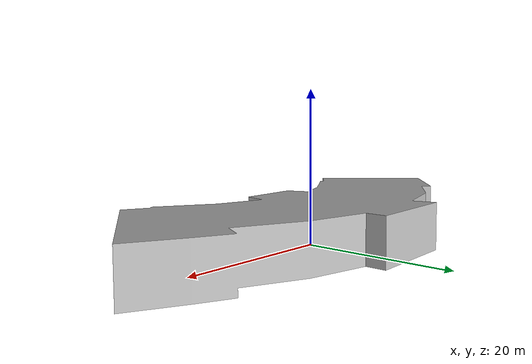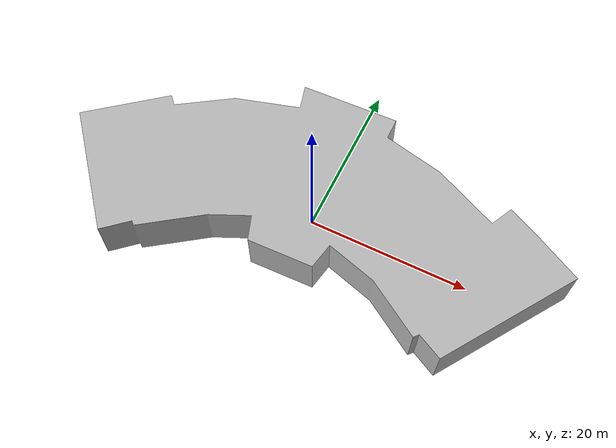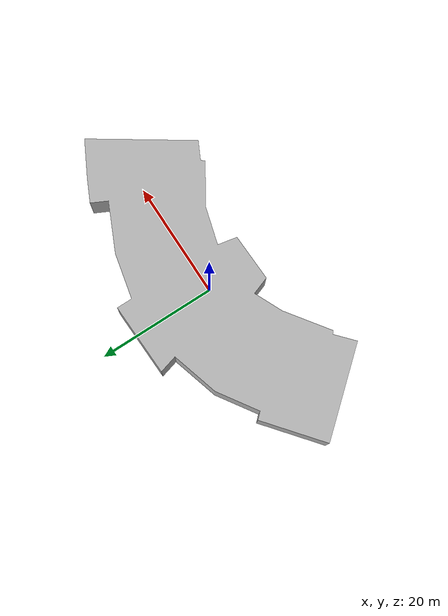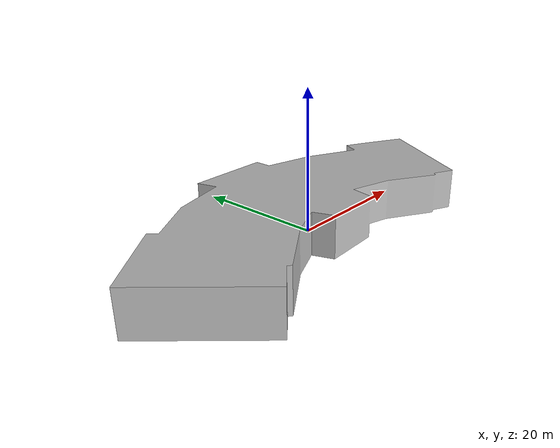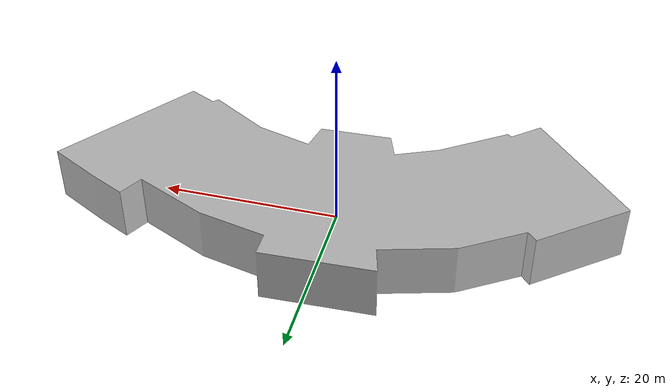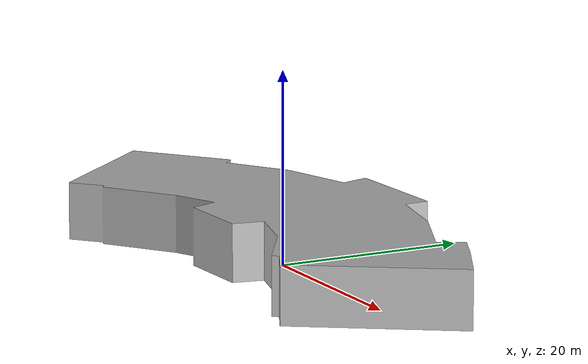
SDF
<?xml version="1.0" ?>
<sdf version="1.7">
  <model name="building_3405_assumed_a_tribunal">
    <static>true</static>
    <link name="building_link">
      <visual name="building_visual">
        <geometry>
          <mesh>
            <uri>model://building_3405_assumed_a_tribunal/meshes/construction_3405_assumed_A_Tribunal_h6m.obj</uri>
          </mesh>
        </geometry>
      </visual>
    <collision name="building_collision">
      <geometry>
        <mesh>
          <uri>model://building_3405_assumed_a_tribunal/meshes/construction_3405_assumed_A_Tribunal_h6m.obj</uri>
        </mesh>
      </geometry>
    </collision>
    </link>
  </model>
</sdf>
